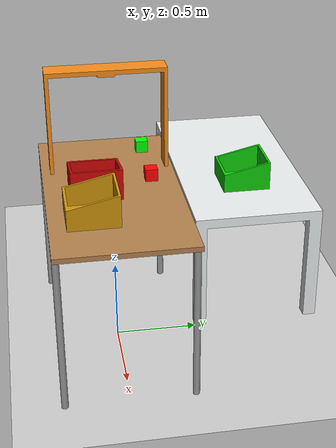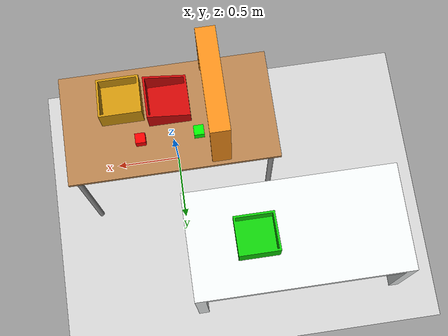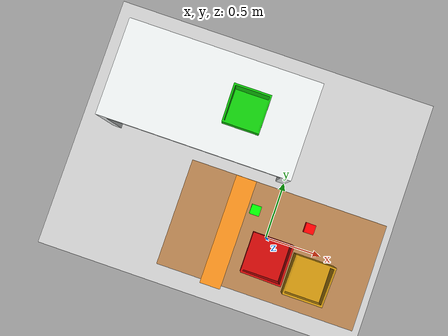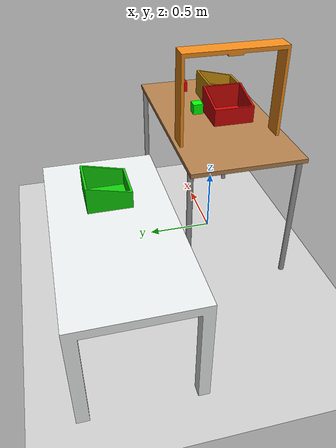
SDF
<?xml version="1.0" ?>
<sdf version='1.9'>
  <world name='simulation_world'>
    <physics name='1ms' type='ignored'>
      <max_step_size>0.001</max_step_size>
      <real_time_factor>1</real_time_factor>
      <real_time_update_rate>1000</real_time_update_rate>
    </physics>
    <plugin name='gz::sim::systems::Physics' filename='ignition-gazebo-physics-system'/>
    <plugin name='gz::sim::systems::Sensors' filename='ignition-gazebo-sensors-system'>
      <render_engine>ogre</render_engine>
    </plugin>
    <plugin name='gz::sim::systems::UserCommands' filename='ignition-gazebo-user-commands-system'/>
    <plugin name='gz::sim::systems::SceneBroadcaster' filename='ignition-gazebo-scene-broadcaster-system'/>
    <scene>
      <ambient>1 1 1 1</ambient>
      <background>0.8 0.8 0.8 1</background>
      <grid>true</grid>
      <shadows>true</shadows>
    </scene>

    <gui fullscreen='false'>
      <plugin name='3D View' filename='MinimalScene'>
        <ignition-gui>
          <title>3D View</title>
          <property type='bool' key='showTitleBar'>false</property>
          <property type='string' key='state'>docked</property>
        </ignition-gui>
        <engine>ogre2</engine>
        <scene>scene</scene>
        <ambient_light>0.4 0.4 0.4</ambient_light>
        <background_color>0.8 0.8 0.8</background_color>
        <camera_pose>-6 0 6 0 0.5 0</camera_pose>
      </plugin>
      <plugin name='Entity context menu' filename='EntityContextMenuPlugin'>
        <ignition-gui>
          <property key='state' type='string'>floating</property>
          <property key='width' type='double'>5</property>
          <property key='height' type='double'>5</property>
          <property key='showTitleBar' type='bool'>false</property>
        </ignition-gui>
      </plugin>
      <plugin name='Scene Manager' filename='GzSceneManager'>
        <ignition-gui>
          <property key='resizable' type='bool'>false</property>
          <property key='width' type='double'>5</property>
          <property key='height' type='double'>5</property>
          <property key='state' type='string'>floating</property>
          <property key='showTitleBar' type='bool'>false</property>
        </ignition-gui>
      </plugin>
      <plugin name='Interactive view control' filename='InteractiveViewControl'>
        <ignition-gui>
          <property key='resizable' type='bool'>false</property>
          <property key='width' type='double'>5</property>
          <property key='height' type='double'>5</property>
          <property key='state' type='string'>floating</property>
          <property key='showTitleBar' type='bool'>false</property>
        </ignition-gui>
      </plugin>
      <plugin name='Camera Tracking' filename='CameraTracking'>
        <ignition-gui>
          <property key='resizable' type='bool'>false</property>
          <property key='width' type='double'>5</property>
          <property key='height' type='double'>5</property>
          <property key='state' type='string'>floating</property>
          <property key='showTitleBar' type='bool'>false</property>
        </ignition-gui>
      </plugin>
      <plugin name='World control' filename='WorldControl'>
        <ignition-gui>
          <title>World control</title>
          <property type='bool' key='showTitleBar'>false</property>
          <property type='bool' key='resizable'>false</property>
          <property type='double' key='height'>72</property>
          <property type='double' key='width'>121</property>
          <property type='double' key='z'>1</property>
          <property type='string' key='state'>floating</property>
          <anchors target='3D View'>
            <line own='left' target='left'/>
            <line own='bottom' target='bottom'/>
          </anchors>
        </ignition-gui>
        <play_pause>true</play_pause>
        <step>true</step>
        <start_paused>true</start_paused>
        <use_event>true</use_event>
      </plugin>
      <plugin name='World stats' filename='WorldStats'>
        <ignition-gui>
          <title>World stats</title>
          <property type='bool' key='showTitleBar'>false</property>
          <property type='bool' key='resizable'>false</property>
          <property type='double' key='height'>110</property>
          <property type='double' key='width'>290</property>
          <property type='double' key='z'>1</property>
          <property type='string' key='state'>floating</property>
          <anchors target='3D View'>
            <line own='right' target='right'/>
            <line own='bottom' target='bottom'/>
          </anchors>
        </ignition-gui>
        <sim_time>true</sim_time>
        <real_time>true</real_time>
        <real_time_factor>true</real_time_factor>
        <iterations>true</iterations>
      </plugin>
      <plugin name='Component inspector' filename='ComponentInspector'>
        <ignition-gui>
          <property type='string' key='state'>docked</property>
        </ignition-gui>
      </plugin>
      <plugin name='Entity tree' filename='EntityTree'>
        <ignition-gui>
          <property type='string' key='state'>docked</property>
        </ignition-gui>
      </plugin>
    </gui>
    <gravity>0 0 -9.8</gravity>
    <magnetic_field>6e-06 2.3e-05 -4.2e-05</magnetic_field>
    <atmosphere type='adiabatic'/>
    <model name='ground_plane'>
      <static>true</static>
      <link name='link'>
        <collision name='collision'>
          <geometry>
            <plane>
              <normal>0 0 1</normal>
              <size>100 100</size>
            </plane>
          </geometry>
          <surface>
            <friction>
              <ode/>
            </friction>
            <bounce/>
            <contact/>
          </surface>
        </collision>
        <visual name='visual'>
          <geometry>
            <plane>
              <normal>0 0 1</normal>
              <size>100 100</size>
            </plane>
          </geometry>
          <material>
            <ambient>0.8 0.8 0.8 1</ambient>
            <diffuse>0.8 0.8 0.8 1</diffuse>
            <specular>0.8 0.8 0.8 1</specular>
          </material>
        </visual>
        <pose>0 0 0 0 -0 0</pose>
        <inertial>
          <pose>0 0 0 0 -0 0</pose>
          <mass>1</mass>
          <inertia>
            <ixx>1</ixx>
            <ixy>0</ixy>
            <ixz>0</ixz>
            <iyy>1</iyy>
            <iyz>0</iyz>
            <izz>1</izz>
          </inertia>
        </inertial>
        <enable_wind>false</enable_wind>
      </link>
      <pose>0 0 0 0 -0 0</pose>
      <self_collide>false</self_collide>
    </model>
    <model name='red_cube'>
      <pose>0.2 0.2 1.2 0 -0 0</pose>
      <link name='box_link'>
        <inertial>
          <inertia>
            <ixx>1</ixx>
            <ixy>0</ixy>
            <ixz>0</ixz>
            <iyy>1</iyy>
            <iyz>0</iyz>
            <izz>1</izz>
          </inertia>
          <mass>0.5</mass>
          <pose>0 0 0 0 -0 0</pose>
        </inertial>
        <collision name='box_collision'>
          <geometry>
            <box>
              <size>0.07 0.07 0.07</size>
            </box>
          </geometry>
          <surface>
            <friction>
              <ode/>
            </friction>
            <bounce/>
            <contact/>
          </surface>
        </collision>
        <visual name='box_visual'>
          <geometry>
            <box>
              <size>0.07 0.07 0.07</size>
            </box>
          </geometry>
          <material>
            <ambient>1 0 0 1</ambient>
            <diffuse>1 0 0 1</diffuse>
            <specular>1 0 0 1</specular>
          </material>
        </visual>
        <pose>0 0 0 0 -0 0</pose>
        <enable_wind>false</enable_wind>
      </link>
      <static>false</static>
      <self_collide>false</self_collide>
    </model>
    <model name='green_cube'>
      <pose>-0.2 0.2 1.2 0 -0 0</pose>
      <link name='box_link'>
        <inertial>
          <inertia>
            <ixx>1</ixx>
            <ixy>0</ixy>
            <ixz>0</ixz>
            <iyy>1</iyy>
            <iyz>0</iyz>
            <izz>1</izz>
          </inertia>
          <mass>0.5</mass>
          <pose>0 0 0 0 -0 0</pose>
        </inertial>
        <collision name='box_collision'>
          <geometry>
            <box>
              <size>0.07 0.07 0.07</size>
            </box>
          </geometry>
          <surface>
            <friction>
              <ode/>
            </friction>
            <bounce/>
            <contact/>
          </surface>
        </collision>
        <visual name='box_visual'>
          <geometry>
            <box>
              <size>0.07 0.07 0.07</size>
            </box>
          </geometry>
          <material>
            <ambient>0 1 0 1</ambient>
            <diffuse>0 1 0 1</diffuse>
            <specular>0 1 0 1</specular>
          </material>
        </visual>
        <pose>0 0 0 0 -0 0</pose>
        <enable_wind>false</enable_wind>
      </link>
      <static>false</static>
      <self_collide>false</self_collide>
    </model>
    <include>
      <uri>model://red_target</uri>
      <name>red_target</name>
      <pose>-0.01 -0.1 1.01 -0 -0 3.14</pose>
    </include>
    <include>
      <uri>model://yellow_target</uri>
      <name>yellow_target</name>
      <pose>0.32 -0.15 1.01 -0 -0 -1.57</pose>
    </include>
    <include>
      <uri>model://green_target</uri>
      <name>green_target</name>
      <pose>-0.5 0.9 0.75 -0 -0 -1.57</pose>
    </include>
    <include>
      <uri>model://target_table</uri>
      <name>target_table</name>
      <pose>-0.8 0.9 0 -0 -0 0</pose>
    </include>
    <include>
      <uri>model://table</uri>
      <name>table</name>
      <pose>-0 0 0 -0 -0 0</pose>
    </include>
    <include>
      <uri>model://overhead_camera_mount</uri>
      <name>overhead_camera_mount</name>
      <pose>-0.4 -0.35 1.65 0 1.57 0</pose>
    </include>
    <light name='sun' type='directional'>
      <pose>0 0 10 0 -0 0</pose>
      <cast_shadows>true</cast_shadows>
      <intensity>1</intensity>
      <direction>-0.5 0.1 -0.9</direction>
      <diffuse>0.8 0.8 0.8 1</diffuse>
      <specular>0.8 0.8 0.8 1</specular>
      <attenuation>
        <range>1000</range>
        <linear>0.01</linear>
        <constant>0.90000000000000002</constant>
        <quadratic>0.001</quadratic>
      </attenuation>
      <spot>
        <inner_angle>0</inner_angle>
        <outer_angle>0</outer_angle>
        <falloff>0</falloff>
      </spot>
    </light>
  </world>
</sdf>

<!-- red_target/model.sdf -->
<sdf version='1.6'>
  <model name='red_target'>
    <static>true</static>
    <link name="link">
      <self_collide>0</self_collide>
      <enable_wind>0</enable_wind>
      <kinematic>0</kinematic>
      <pose frame=''>0 0 0 0 -0 0</pose>
      <gravity>1</gravity>
      <inertial>
        <mass>1</mass>
        <pose frame=''>0 0 0 0 -0 0</pose>
        <inertia>
          <ixx>1</ixx>
          <ixy>0</ixy>
          <ixz>0</ixz>
          <iyy>1</iyy>
          <iyz>0</iyz>
          <izz>1</izz>
        </inertia>
      </inertial>
      <visual name='visual'>
        <pose frame=''>0 0 0.01 0 -0 0</pose>
        <geometry>
          <mesh>
            <scale>0.5 0.5 0.5</scale>
            <uri>model://red_target/meshes/red_target.dae</uri>
          </mesh>
        </geometry>
      </visual>
            <collision name='front_wall'>
        <laser_retro>0</laser_retro>
        <max_contacts>10</max_contacts>
        <pose frame=''>0.144 0 0 0 -0 0</pose>
        <geometry>
          <box>
            <size>0.012 0.3 0.24</size>
          </box>
        </geometry>
        <surface>
          <friction>
            <ode>
              <mu>1</mu>
              <mu2>1</mu2>
              <fdir1>0 0 0</fdir1>
              <slip1>0</slip1>
              <slip2>0</slip2>
            </ode>
            <torsional>
              <coefficient>1</coefficient>
              <patch_radius>0</patch_radius>
              <surface_radius>0</surface_radius>
              <use_patch_radius>1</use_patch_radius>
              <ode>
                <slip>0</slip>
              </ode>
            </torsional>
          </friction>
          <bounce>
            <restitution_coefficient>0</restitution_coefficient>
            <threshold>1e+06</threshold>
          </bounce>
          <contact>
            <collide_without_contact>0</collide_without_contact>
            <collide_without_contact_bitmask>1</collide_without_contact_bitmask>
            <collide_bitmask>1</collide_bitmask>
            <ode>
              <soft_cfm>0</soft_cfm>
              <soft_erp>0.2</soft_erp>
              <kp>1e+13</kp>
              <kd>1</kd>
              <max_vel>0.01</max_vel>
              <min_depth>0</min_depth>
            </ode>
            <bullet>
              <split_impulse>1</split_impulse>
              <split_impulse_penetration_threshold>-0.01</split_impulse_penetration_threshold>
              <soft_cfm>0</soft_cfm>
              <soft_erp>0.2</soft_erp>
              <kp>1e+13</kp>
              <kd>1</kd>
            </bullet>
          </contact>
        </surface>
      </collision>
      <collision name='right_wall'>
        <laser_retro>0</laser_retro>
        <max_contacts>10</max_contacts>
        <pose frame=''>0 -0.144 0 0 -0 0</pose>
        <geometry>
          <box>
            <size>0.3 0.012 0.36</size>
          </box>
        </geometry>
        <surface>
          <friction>
            <ode>
              <mu>1</mu>
              <mu2>1</mu2>
              <fdir1>0 0 0</fdir1>
              <slip1>0</slip1>
              <slip2>0</slip2>
            </ode>
            <torsional>
              <coefficient>1</coefficient>
              <patch_radius>0</patch_radius>
              <surface_radius>0</surface_radius>
              <use_patch_radius>1</use_patch_radius>
              <ode>
                <slip>0</slip>
              </ode>
            </torsional>
          </friction>
          <bounce>
            <restitution_coefficient>0</restitution_coefficient>
            <threshold>1e+06</threshold>
          </bounce>
          <contact>
            <collide_without_contact>0</collide_without_contact>
            <collide_without_contact_bitmask>1</collide_without_contact_bitmask>
            <collide_bitmask>1</collide_bitmask>
            <ode>
              <soft_cfm>0</soft_cfm>
              <soft_erp>0.2</soft_erp>
              <kp>1e+13</kp>
              <kd>1</kd>
              <max_vel>0.01</max_vel>
              <min_depth>0</min_depth>
            </ode>
            <bullet>
              <split_impulse>1</split_impulse>
              <split_impulse_penetration_threshold>-0.01</split_impulse_penetration_threshold>
              <soft_cfm>0</soft_cfm>
              <soft_erp>0.2</soft_erp>
              <kp>1e+13</kp>
              <kd>1</kd>
            </bullet>
          </contact>
        </surface>
      </collision>
      <collision name='bottom'>
        <laser_retro>0</laser_retro>
        <max_contacts>10</max_contacts>
        <pose frame=''>0 0 0 0 -0 0</pose>
        <geometry>
          <box>
            <size>0.3 0.3 0.025</size>
          </box>
        </geometry>
        <surface>
          <friction>
            <ode>
              <mu>1</mu>
              <mu2>1</mu2>
              <fdir1>0 0 0</fdir1>
              <slip1>0</slip1>
              <slip2>0</slip2>
            </ode>
            <torsional>
              <coefficient>1</coefficient>
              <patch_radius>0</patch_radius>
              <surface_radius>0</surface_radius>
              <use_patch_radius>1</use_patch_radius>
              <ode>
                <slip>0</slip>
              </ode>
            </torsional>
          </friction>
          <bounce>
            <restitution_coefficient>0</restitution_coefficient>
            <threshold>1e+06</threshold>
          </bounce>
          <contact>
            <collide_without_contact>0</collide_without_contact>
            <collide_without_contact_bitmask>1</collide_without_contact_bitmask>
            <collide_bitmask>1</collide_bitmask>
            <ode>
              <soft_cfm>0</soft_cfm>
              <soft_erp>0.2</soft_erp>
              <kp>1e+13</kp>
              <kd>1</kd>
              <max_vel>0.01</max_vel>
              <min_depth>0</min_depth>
            </ode>
            <bullet>
              <split_impulse>1</split_impulse>
              <split_impulse_penetration_threshold>-0.01</split_impulse_penetration_threshold>
              <soft_cfm>0</soft_cfm>
              <soft_erp>0.2</soft_erp>
              <kp>1e+13</kp>
              <kd>1</kd>
            </bullet>
          </contact>
        </surface>
      </collision>
      <collision name='left_wall'>
        <laser_retro>0</laser_retro>
        <max_contacts>10</max_contacts>
        <pose frame=''>0 0.144 0 0 -0 0</pose>
        <geometry>
          <box>
            <size>0.3 0.012 0.39</size>
          </box>
        </geometry>
        <surface>
          <friction>
            <ode>
              <mu>1</mu>
              <mu2>1</mu2>
              <fdir1>0 0 0</fdir1>
              <slip1>0</slip1>
              <slip2>0</slip2>
            </ode>
            <torsional>
              <coefficient>1</coefficient>
              <patch_radius>0</patch_radius>
              <surface_radius>0</surface_radius>
              <use_patch_radius>1</use_patch_radius>
              <ode>
                <slip>0</slip>
              </ode>
            </torsional>
          </friction>
          <bounce>
            <restitution_coefficient>0</restitution_coefficient>
            <threshold>1e+06</threshold>
          </bounce>
          <contact>
            <collide_without_contact>0</collide_without_contact>
            <collide_without_contact_bitmask>1</collide_without_contact_bitmask>
            <collide_bitmask>1</collide_bitmask>
            <ode>
              <soft_cfm>0</soft_cfm>
              <soft_erp>0.2</soft_erp>
              <kp>1e+13</kp>
              <kd>1</kd>
              <max_vel>0.01</max_vel>
              <min_depth>0</min_depth>
            </ode>
            <bullet>
              <split_impulse>1</split_impulse>
              <split_impulse_penetration_threshold>-0.01</split_impulse_penetration_threshold>
              <soft_cfm>0</soft_cfm>
              <soft_erp>0.2</soft_erp>
              <kp>1e+13</kp>
              <kd>1</kd>
            </bullet>
          </contact>
        </surface>
      </collision>
      <collision name='back_wall'>
        <laser_retro>0</laser_retro>
        <max_contacts>10</max_contacts>
        <pose frame=''>-0.144 0 0 0 -0 0</pose>
        <geometry>
          <box>
            <size>0.012 0.3 0.39</size>
          </box>
        </geometry>
        <surface>
          <friction>
            <ode>
              <mu>1</mu>
              <mu2>1</mu2>
              <fdir1>0 0 0</fdir1>
              <slip1>0</slip1>
              <slip2>0</slip2>
            </ode>
            <torsional>
              <coefficient>1</coefficient>
              <patch_radius>0</patch_radius>
              <surface_radius>0</surface_radius>
              <use_patch_radius>1</use_patch_radius>
              <ode>
                <slip>0</slip>
              </ode>
            </torsional>
          </friction>
          <bounce>
            <restitution_coefficient>0</restitution_coefficient>
            <threshold>1e+06</threshold>
          </bounce>
          <contact>
            <collide_without_contact>0</collide_without_contact>
            <collide_without_contact_bitmask>1</collide_without_contact_bitmask>
            <collide_bitmask>1</collide_bitmask>
            <ode>
              <soft_cfm>0</soft_cfm>
              <soft_erp>0.2</soft_erp>
              <kp>1e+13</kp>
              <kd>1</kd>
              <max_vel>0.01</max_vel>
              <min_depth>0</min_depth>
            </ode>
            <bullet>
              <split_impulse>1</split_impulse>
              <split_impulse_penetration_threshold>-0.01</split_impulse_penetration_threshold>
              <soft_cfm>0</soft_cfm>
              <soft_erp>0.2</soft_erp>
              <kp>1e+13</kp>
              <kd>1</kd>
            </bullet>
          </contact>
        </surface>
      </collision>
    </link>
  </model>
</sdf>

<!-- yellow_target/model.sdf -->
<sdf version='1.6'>
  <model name='yellow_target'>
    <static>true</static>
    <link name="link">
      <self_collide>0</self_collide>
      <enable_wind>0</enable_wind>
      <kinematic>0</kinematic>
      <pose frame=''>0 0 0 0 -0 0</pose>
      <gravity>1</gravity>
      <inertial>
        <mass>1</mass>
        <pose frame=''>0 0 0 0 -0 0</pose>
        <inertia>
          <ixx>1</ixx>
          <ixy>0</ixy>
          <ixz>0</ixz>
          <iyy>1</iyy>
          <iyz>0</iyz>
          <izz>1</izz>
        </inertia>
      </inertial>
      <visual name='visual'>
        <pose frame=''>0 0 0.01 0 -0 0</pose>
        <geometry>
          <mesh>
            <scale>0.5 0.5 0.5</scale>
            <uri>model://yellow_target/meshes/yellow_target.dae</uri>
          </mesh>
        </geometry>
      </visual>
            <collision name='front_wall'>
        <laser_retro>0</laser_retro>
        <max_contacts>10</max_contacts>
        <pose frame=''>0.144 0 0 0 -0 0</pose>
        <geometry>
          <box>
            <size>0.012 0.3 0.24</size>
          </box>
        </geometry>
        <surface>
          <friction>
            <ode>
              <mu>1</mu>
              <mu2>1</mu2>
              <fdir1>0 0 0</fdir1>
              <slip1>0</slip1>
              <slip2>0</slip2>
            </ode>
            <torsional>
              <coefficient>1</coefficient>
              <patch_radius>0</patch_radius>
              <surface_radius>0</surface_radius>
              <use_patch_radius>1</use_patch_radius>
              <ode>
                <slip>0</slip>
              </ode>
            </torsional>
          </friction>
          <bounce>
            <restitution_coefficient>0</restitution_coefficient>
            <threshold>1e+06</threshold>
          </bounce>
          <contact>
            <collide_without_contact>0</collide_without_contact>
            <collide_without_contact_bitmask>1</collide_without_contact_bitmask>
            <collide_bitmask>1</collide_bitmask>
            <ode>
              <soft_cfm>0</soft_cfm>
              <soft_erp>0.2</soft_erp>
              <kp>1e+13</kp>
              <kd>1</kd>
              <max_vel>0.01</max_vel>
              <min_depth>0</min_depth>
            </ode>
            <bullet>
              <split_impulse>1</split_impulse>
              <split_impulse_penetration_threshold>-0.01</split_impulse_penetration_threshold>
              <soft_cfm>0</soft_cfm>
              <soft_erp>0.2</soft_erp>
              <kp>1e+13</kp>
              <kd>1</kd>
            </bullet>
          </contact>
        </surface>
      </collision>
      <collision name='right_wall'>
        <laser_retro>0</laser_retro>
        <max_contacts>10</max_contacts>
        <pose frame=''>0 -0.144 0 0 -0 0</pose>
        <geometry>
          <box>
            <size>0.3 0.012 0.36</size>
          </box>
        </geometry>
        <surface>
          <friction>
            <ode>
              <mu>1</mu>
              <mu2>1</mu2>
              <fdir1>0 0 0</fdir1>
              <slip1>0</slip1>
              <slip2>0</slip2>
            </ode>
            <torsional>
              <coefficient>1</coefficient>
              <patch_radius>0</patch_radius>
              <surface_radius>0</surface_radius>
              <use_patch_radius>1</use_patch_radius>
              <ode>
                <slip>0</slip>
              </ode>
            </torsional>
          </friction>
          <bounce>
            <restitution_coefficient>0</restitution_coefficient>
            <threshold>1e+06</threshold>
          </bounce>
          <contact>
            <collide_without_contact>0</collide_without_contact>
            <collide_without_contact_bitmask>1</collide_without_contact_bitmask>
            <collide_bitmask>1</collide_bitmask>
            <ode>
              <soft_cfm>0</soft_cfm>
              <soft_erp>0.2</soft_erp>
              <kp>1e+13</kp>
              <kd>1</kd>
              <max_vel>0.01</max_vel>
              <min_depth>0</min_depth>
            </ode>
            <bullet>
              <split_impulse>1</split_impulse>
              <split_impulse_penetration_threshold>-0.01</split_impulse_penetration_threshold>
              <soft_cfm>0</soft_cfm>
              <soft_erp>0.2</soft_erp>
              <kp>1e+13</kp>
              <kd>1</kd>
            </bullet>
          </contact>
        </surface>
      </collision>
      <collision name='bottom'>
        <laser_retro>0</laser_retro>
        <max_contacts>10</max_contacts>
        <pose frame=''>0 0 0 0 -0 0</pose>
        <geometry>
          <box>
            <size>0.3 0.3 0.025</size>
          </box>
        </geometry>
        <surface>
          <friction>
            <ode>
              <mu>1</mu>
              <mu2>1</mu2>
              <fdir1>0 0 0</fdir1>
              <slip1>0</slip1>
              <slip2>0</slip2>
            </ode>
            <torsional>
              <coefficient>1</coefficient>
              <patch_radius>0</patch_radius>
              <surface_radius>0</surface_radius>
              <use_patch_radius>1</use_patch_radius>
              <ode>
                <slip>0</slip>
              </ode>
            </torsional>
          </friction>
          <bounce>
            <restitution_coefficient>0</restitution_coefficient>
            <threshold>1e+06</threshold>
          </bounce>
          <contact>
            <collide_without_contact>0</collide_without_contact>
            <collide_without_contact_bitmask>1</collide_without_contact_bitmask>
            <collide_bitmask>1</collide_bitmask>
            <ode>
              <soft_cfm>0</soft_cfm>
              <soft_erp>0.2</soft_erp>
              <kp>1e+13</kp>
              <kd>1</kd>
              <max_vel>0.01</max_vel>
              <min_depth>0</min_depth>
            </ode>
            <bullet>
              <split_impulse>1</split_impulse>
              <split_impulse_penetration_threshold>-0.01</split_impulse_penetration_threshold>
              <soft_cfm>0</soft_cfm>
              <soft_erp>0.2</soft_erp>
              <kp>1e+13</kp>
              <kd>1</kd>
            </bullet>
          </contact>
        </surface>
      </collision>
      <collision name='left_wall'>
        <laser_retro>0</laser_retro>
        <max_contacts>10</max_contacts>
        <pose frame=''>0 0.144 0 0 -0 0</pose>
        <geometry>
          <box>
            <size>0.3 0.012 0.39</size>
          </box>
        </geometry>
        <surface>
          <friction>
            <ode>
              <mu>1</mu>
              <mu2>1</mu2>
              <fdir1>0 0 0</fdir1>
              <slip1>0</slip1>
              <slip2>0</slip2>
            </ode>
            <torsional>
              <coefficient>1</coefficient>
              <patch_radius>0</patch_radius>
              <surface_radius>0</surface_radius>
              <use_patch_radius>1</use_patch_radius>
              <ode>
                <slip>0</slip>
              </ode>
            </torsional>
          </friction>
          <bounce>
            <restitution_coefficient>0</restitution_coefficient>
            <threshold>1e+06</threshold>
          </bounce>
          <contact>
            <collide_without_contact>0</collide_without_contact>
            <collide_without_contact_bitmask>1</collide_without_contact_bitmask>
            <collide_bitmask>1</collide_bitmask>
            <ode>
              <soft_cfm>0</soft_cfm>
              <soft_erp>0.2</soft_erp>
              <kp>1e+13</kp>
              <kd>1</kd>
              <max_vel>0.01</max_vel>
              <min_depth>0</min_depth>
            </ode>
            <bullet>
              <split_impulse>1</split_impulse>
              <split_impulse_penetration_threshold>-0.01</split_impulse_penetration_threshold>
              <soft_cfm>0</soft_cfm>
              <soft_erp>0.2</soft_erp>
              <kp>1e+13</kp>
              <kd>1</kd>
            </bullet>
          </contact>
        </surface>
      </collision>
      <collision name='back_wall'>
        <laser_retro>0</laser_retro>
        <max_contacts>10</max_contacts>
        <pose frame=''>-0.144 0 0 0 -0 0</pose>
        <geometry>
          <box>
            <size>0.012 0.3 0.39</size>
          </box>
        </geometry>
        <surface>
          <friction>
            <ode>
              <mu>1</mu>
              <mu2>1</mu2>
              <fdir1>0 0 0</fdir1>
              <slip1>0</slip1>
              <slip2>0</slip2>
            </ode>
            <torsional>
              <coefficient>1</coefficient>
              <patch_radius>0</patch_radius>
              <surface_radius>0</surface_radius>
              <use_patch_radius>1</use_patch_radius>
              <ode>
                <slip>0</slip>
              </ode>
            </torsional>
          </friction>
          <bounce>
            <restitution_coefficient>0</restitution_coefficient>
            <threshold>1e+06</threshold>
          </bounce>
          <contact>
            <collide_without_contact>0</collide_without_contact>
            <collide_without_contact_bitmask>1</collide_without_contact_bitmask>
            <collide_bitmask>1</collide_bitmask>
            <ode>
              <soft_cfm>0</soft_cfm>
              <soft_erp>0.2</soft_erp>
              <kp>1e+13</kp>
              <kd>1</kd>
              <max_vel>0.01</max_vel>
              <min_depth>0</min_depth>
            </ode>
            <bullet>
              <split_impulse>1</split_impulse>
              <split_impulse_penetration_threshold>-0.01</split_impulse_penetration_threshold>
              <soft_cfm>0</soft_cfm>
              <soft_erp>0.2</soft_erp>
              <kp>1e+13</kp>
              <kd>1</kd>
            </bullet>
          </contact>
        </surface>
      </collision>
    </link>
  </model>
</sdf>

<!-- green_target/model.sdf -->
<sdf version='1.6'>
  <model name='green_target'>
    <static>true</static>
    <link name="link">
      <self_collide>0</self_collide>
      <enable_wind>0</enable_wind>
      <kinematic>0</kinematic>
      <pose frame=''>0 0 0 0 -0 0</pose>
      <gravity>1</gravity>
      <inertial>
        <mass>1</mass>
        <pose frame=''>0 0 0 0 -0 0</pose>
        <inertia>
          <ixx>1</ixx>
          <ixy>0</ixy>
          <ixz>0</ixz>
          <iyy>1</iyy>
          <iyz>0</iyz>
          <izz>1</izz>
        </inertia>
      </inertial>
      <visual name='visual'>
        <pose frame=''>0 0 0.01 0 -0 0</pose>
        <geometry>
          <mesh>
            <scale>0.5 0.5 0.5</scale>
            <uri>model://green_target/meshes/green_target.dae</uri>
          </mesh>
        </geometry>
      </visual>
            <collision name='front_wall'>
        <laser_retro>0</laser_retro>
        <max_contacts>10</max_contacts>
        <pose frame=''>0.144 0 0 0 -0 0</pose>
        <geometry>
          <box>
            <size>0.012 0.3 0.24</size>
          </box>
        </geometry>
        <surface>
          <friction>
            <ode>
              <mu>1</mu>
              <mu2>1</mu2>
              <fdir1>0 0 0</fdir1>
              <slip1>0</slip1>
              <slip2>0</slip2>
            </ode>
            <torsional>
              <coefficient>1</coefficient>
              <patch_radius>0</patch_radius>
              <surface_radius>0</surface_radius>
              <use_patch_radius>1</use_patch_radius>
              <ode>
                <slip>0</slip>
              </ode>
            </torsional>
          </friction>
          <bounce>
            <restitution_coefficient>0</restitution_coefficient>
            <threshold>1e+06</threshold>
          </bounce>
          <contact>
            <collide_without_contact>0</collide_without_contact>
            <collide_without_contact_bitmask>1</collide_without_contact_bitmask>
            <collide_bitmask>1</collide_bitmask>
            <ode>
              <soft_cfm>0</soft_cfm>
              <soft_erp>0.2</soft_erp>
              <kp>1e+13</kp>
              <kd>1</kd>
              <max_vel>0.01</max_vel>
              <min_depth>0</min_depth>
            </ode>
            <bullet>
              <split_impulse>1</split_impulse>
              <split_impulse_penetration_threshold>-0.01</split_impulse_penetration_threshold>
              <soft_cfm>0</soft_cfm>
              <soft_erp>0.2</soft_erp>
              <kp>1e+13</kp>
              <kd>1</kd>
            </bullet>
          </contact>
        </surface>
      </collision>
      <collision name='right_wall'>
        <laser_retro>0</laser_retro>
        <max_contacts>10</max_contacts>
        <pose frame=''>0 -0.144 0 0 -0 0</pose>
        <geometry>
          <box>
            <size>0.3 0.012 0.36</size>
          </box>
        </geometry>
        <surface>
          <friction>
            <ode>
              <mu>1</mu>
              <mu2>1</mu2>
              <fdir1>0 0 0</fdir1>
              <slip1>0</slip1>
              <slip2>0</slip2>
            </ode>
            <torsional>
              <coefficient>1</coefficient>
              <patch_radius>0</patch_radius>
              <surface_radius>0</surface_radius>
              <use_patch_radius>1</use_patch_radius>
              <ode>
                <slip>0</slip>
              </ode>
            </torsional>
          </friction>
          <bounce>
            <restitution_coefficient>0</restitution_coefficient>
            <threshold>1e+06</threshold>
          </bounce>
          <contact>
            <collide_without_contact>0</collide_without_contact>
            <collide_without_contact_bitmask>1</collide_without_contact_bitmask>
            <collide_bitmask>1</collide_bitmask>
            <ode>
              <soft_cfm>0</soft_cfm>
              <soft_erp>0.2</soft_erp>
              <kp>1e+13</kp>
              <kd>1</kd>
              <max_vel>0.01</max_vel>
              <min_depth>0</min_depth>
            </ode>
            <bullet>
              <split_impulse>1</split_impulse>
              <split_impulse_penetration_threshold>-0.01</split_impulse_penetration_threshold>
              <soft_cfm>0</soft_cfm>
              <soft_erp>0.2</soft_erp>
              <kp>1e+13</kp>
              <kd>1</kd>
            </bullet>
          </contact>
        </surface>
      </collision>
      <collision name='bottom'>
        <laser_retro>0</laser_retro>
        <max_contacts>10</max_contacts>
        <pose frame=''>0 0 0 0 -0 0</pose>
        <geometry>
          <box>
            <size>0.3 0.3 0.025</size>
          </box>
        </geometry>
        <surface>
          <friction>
            <ode>
              <mu>1</mu>
              <mu2>1</mu2>
              <fdir1>0 0 0</fdir1>
              <slip1>0</slip1>
              <slip2>0</slip2>
            </ode>
            <torsional>
              <coefficient>1</coefficient>
              <patch_radius>0</patch_radius>
              <surface_radius>0</surface_radius>
              <use_patch_radius>1</use_patch_radius>
              <ode>
                <slip>0</slip>
              </ode>
            </torsional>
          </friction>
          <bounce>
            <restitution_coefficient>0</restitution_coefficient>
            <threshold>1e+06</threshold>
          </bounce>
          <contact>
            <collide_without_contact>0</collide_without_contact>
            <collide_without_contact_bitmask>1</collide_without_contact_bitmask>
            <collide_bitmask>1</collide_bitmask>
            <ode>
              <soft_cfm>0</soft_cfm>
              <soft_erp>0.2</soft_erp>
              <kp>1e+13</kp>
              <kd>1</kd>
              <max_vel>0.01</max_vel>
              <min_depth>0</min_depth>
            </ode>
            <bullet>
              <split_impulse>1</split_impulse>
              <split_impulse_penetration_threshold>-0.01</split_impulse_penetration_threshold>
              <soft_cfm>0</soft_cfm>
              <soft_erp>0.2</soft_erp>
              <kp>1e+13</kp>
              <kd>1</kd>
            </bullet>
          </contact>
        </surface>
      </collision>
      <collision name='left_wall'>
        <laser_retro>0</laser_retro>
        <max_contacts>10</max_contacts>
        <pose frame=''>0 0.144 0 0 -0 0</pose>
        <geometry>
          <box>
            <size>0.3 0.012 0.39</size>
          </box>
        </geometry>
        <surface>
          <friction>
            <ode>
              <mu>1</mu>
              <mu2>1</mu2>
              <fdir1>0 0 0</fdir1>
              <slip1>0</slip1>
              <slip2>0</slip2>
            </ode>
            <torsional>
              <coefficient>1</coefficient>
              <patch_radius>0</patch_radius>
              <surface_radius>0</surface_radius>
              <use_patch_radius>1</use_patch_radius>
              <ode>
                <slip>0</slip>
              </ode>
            </torsional>
          </friction>
          <bounce>
            <restitution_coefficient>0</restitution_coefficient>
            <threshold>1e+06</threshold>
          </bounce>
          <contact>
            <collide_without_contact>0</collide_without_contact>
            <collide_without_contact_bitmask>1</collide_without_contact_bitmask>
            <collide_bitmask>1</collide_bitmask>
            <ode>
              <soft_cfm>0</soft_cfm>
              <soft_erp>0.2</soft_erp>
              <kp>1e+13</kp>
              <kd>1</kd>
              <max_vel>0.01</max_vel>
              <min_depth>0</min_depth>
            </ode>
            <bullet>
              <split_impulse>1</split_impulse>
              <split_impulse_penetration_threshold>-0.01</split_impulse_penetration_threshold>
              <soft_cfm>0</soft_cfm>
              <soft_erp>0.2</soft_erp>
              <kp>1e+13</kp>
              <kd>1</kd>
            </bullet>
          </contact>
        </surface>
      </collision>
      <collision name='back_wall'>
        <laser_retro>0</laser_retro>
        <max_contacts>10</max_contacts>
        <pose frame=''>-0.144 0 0 0 -0 0</pose>
        <geometry>
          <box>
            <size>0.012 0.3 0.39</size>
          </box>
        </geometry>
        <surface>
          <friction>
            <ode>
              <mu>1</mu>
              <mu2>1</mu2>
              <fdir1>0 0 0</fdir1>
              <slip1>0</slip1>
              <slip2>0</slip2>
            </ode>
            <torsional>
              <coefficient>1</coefficient>
              <patch_radius>0</patch_radius>
              <surface_radius>0</surface_radius>
              <use_patch_radius>1</use_patch_radius>
              <ode>
                <slip>0</slip>
              </ode>
            </torsional>
          </friction>
          <bounce>
            <restitution_coefficient>0</restitution_coefficient>
            <threshold>1e+06</threshold>
          </bounce>
          <contact>
            <collide_without_contact>0</collide_without_contact>
            <collide_without_contact_bitmask>1</collide_without_contact_bitmask>
            <collide_bitmask>1</collide_bitmask>
            <ode>
              <soft_cfm>0</soft_cfm>
              <soft_erp>0.2</soft_erp>
              <kp>1e+13</kp>
              <kd>1</kd>
              <max_vel>0.01</max_vel>
              <min_depth>0</min_depth>
            </ode>
            <bullet>
              <split_impulse>1</split_impulse>
              <split_impulse_penetration_threshold>-0.01</split_impulse_penetration_threshold>
              <soft_cfm>0</soft_cfm>
              <soft_erp>0.2</soft_erp>
              <kp>1e+13</kp>
              <kd>1</kd>
            </bullet>
          </contact>
        </surface>
      </collision>
    </link>
  </model>
</sdf>

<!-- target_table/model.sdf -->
<sdf version='1.6'>
  <model name='target_table'>
    <link name='link'>
      <self_collide>0</self_collide>
      <enable_wind>0</enable_wind>
      <kinematic>0</kinematic>
      <pose frame=''>0 0 0 0 -0 0</pose>
      <gravity>1</gravity>
      <inertial>
        <mass>1</mass>
        <pose frame=''>0 0 0 0 -0 0</pose>
        <inertia>
          <ixx>1</ixx>
          <ixy>0</ixy>
          <ixz>0</ixz>
          <iyy>1</iyy>
          <iyz>0</iyz>
          <izz>1</izz>
        </inertia>
      </inertial>
      <visual name='visual'>
        <pose frame=''>0 0 0.73 0 -0 1.57</pose>
        <geometry>
          <mesh>
            <scale>1 1 1</scale>
            <uri>model://target_table/meshes/target_table.dae</uri>
          </mesh>
        </geometry>
      </visual>
      <collision name='collision_0'>
        <laser_retro>0</laser_retro>
        <max_contacts>10</max_contacts>
        <pose frame=''>0 0 0.73 0 -0 0</pose>
        <geometry>
          <box>
            <size>0.8 1.6 0.06</size>
          </box>
        </geometry>
        <surface>
          <friction>
            <ode>
              <mu>1</mu>
              <mu2>1</mu2>
              <fdir1>0 0 0</fdir1>
              <slip1>0</slip1>
              <slip2>0</slip2>
            </ode>
            <torsional>
              <coefficient>1</coefficient>
              <patch_radius>0</patch_radius>
              <surface_radius>0</surface_radius>
              <use_patch_radius>1</use_patch_radius>
              <ode>
                <slip>0</slip>
              </ode>
            </torsional>
          </friction>
          <bounce>
            <restitution_coefficient>0</restitution_coefficient>
            <threshold>1e+06</threshold>
          </bounce>
          <contact>
            <collide_without_contact>0</collide_without_contact>
            <collide_without_contact_bitmask>1</collide_without_contact_bitmask>
            <collide_bitmask>1</collide_bitmask>
            <ode>
              <soft_cfm>0</soft_cfm>
              <soft_erp>0.2</soft_erp>
              <kp>1e+13</kp>
              <kd>1</kd>
              <max_vel>0.01</max_vel>
              <min_depth>0</min_depth>
            </ode>
            <bullet>
              <split_impulse>1</split_impulse>
              <split_impulse_penetration_threshold>-0.01</split_impulse_penetration_threshold>
              <soft_cfm>0</soft_cfm>
              <soft_erp>0.2</soft_erp>
              <kp>1e+13</kp>
              <kd>1</kd>
            </bullet>
          </contact>
        </surface>
      </collision>
    </link>
    <static>1</static>
    <allow_auto_disable>1</allow_auto_disable>
  </model>
</sdf>

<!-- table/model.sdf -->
<sdf version="1.5">
  <model name="table">
    <static>true</static>
    <link name="link">
      <collision name="surface">
        <pose>0 0 1.0 0 0 0</pose>
        <geometry>
          <box>
            <size>1.5 0.8 0.03</size>
          </box>
        </geometry>
        <surface>
          <friction>
            <ode>
              <mu>0.6</mu>
              <mu2>0.6</mu2>
            </ode>
          </friction>
        </surface>
      </collision>
      <visual name="visual1">
        <pose>0 0 1.0 0 0 0</pose>
        <geometry>
          <box>
            <size>1.5 0.8 0.03</size>
          </box>
        </geometry>
        <material>
          <script>
            <uri>model://media/materials/scripts/gazebo.material</uri>
            <name>Gazebo/Wood</name>
          </script>
        </material>
      </visual>
      <collision name="front_left_leg">
        <pose>0.68 0.38 0.5 0 0 0</pose>
        <geometry>
          <cylinder>
            <radius>0.02</radius>
            <length>1.0</length>
          </cylinder>
        </geometry>
      </collision>
      <visual name="front_left_leg">
        <pose>0.68 0.38 0.5 0 0 0</pose>
        <geometry>
          <cylinder>
            <radius>0.02</radius>
            <length>1.0</length>
          </cylinder>
        </geometry>
        <material>
          <script>
            <uri>model://media/materials/scripts/gazebo.material</uri>
            <name>Gazebo/Grey</name>
          </script>
        </material>
      </visual>
      <collision name="front_right_leg">
        <pose>0.68 -0.38 0.5 0 0 0</pose>
        <geometry>
          <cylinder>
            <radius>0.02</radius>
            <length>1.0</length>
          </cylinder>
        </geometry>
      </collision>
      <visual name="front_right_leg">
        <pose>0.68 -0.38 0.5 0 0 0</pose>
        <geometry>
          <cylinder>
            <radius>0.02</radius>
            <length>1.0</length>
          </cylinder>
        </geometry>
        <material>
          <script>
            <uri>model://media/materials/scripts/gazebo.material</uri>
            <name>Gazebo/Grey</name>
          </script>
        </material>
      </visual>
      <collision name="back_right_leg">
        <pose>-0.68 -0.38 0.5 0 0 0</pose>
        <geometry>
          <cylinder>
            <radius>0.02</radius>
            <length>1.0</length>
          </cylinder>
        </geometry>
      </collision>
      <visual name="back_right_leg">
        <pose>-0.68 -0.38 0.5 0 0 0</pose>
        <geometry>
          <cylinder>
            <radius>0.02</radius>
            <length>1.0</length>
          </cylinder>
        </geometry>
        <material>
          <script>
            <uri>model://media/materials/scripts/gazebo.material</uri>
            <name>Gazebo/Grey</name>
          </script>
        </material>
      </visual>
      <collision name="back_left_leg">
        <pose>-0.68 0.38 0.5 0 0 0</pose>
        <geometry>
          <cylinder>
            <radius>0.02</radius>
            <length>1.0</length>
          </cylinder>
        </geometry>
      </collision>
      <visual name="back_left_leg">
        <pose>-0.68 0.38 0.5 0 0 0</pose>
        <geometry>
          <cylinder>
            <radius>0.02</radius>
            <length>1.0</length>
          </cylinder>
        </geometry>
        <material>
          <script>
            <uri>model://media/materials/scripts/gazebo.material</uri>
            <name>Gazebo/Grey</name>
          </script>
        </material>
      </visual>
    </link>
  </model>
</sdf>

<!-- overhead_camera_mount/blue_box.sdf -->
<sdf version="1.6">
  <model name="overhead_camera_mount">
    <static>true</static>
    <link name="link">

      <!-- Inertial properties -->
      <inertial>
        <mass>1.0</mass>
        <inertia>
          <!-- Replace these values with actual values for your object -->
          <ixx>0.136322</ixx>
          <ixy>0</ixy>
          <ixz>0.009477</ixz>
          <iyy>0.189113</iyy>
          <iyz>0</iyz>
          <izz>0.178258</izz>
        </inertia>
        <pose>0 0 0 0 0 0</pose> <!-- Optional: adjust pose of the center of mass -->
      </inertial>
      <!-- Visual properties -->
      <visual name="visual">
        <material>
          <script>
            <name>Gazebo/Orange</name>
            <uri>model://overhead_camera_mount/media/materials/scripts/gazebo.material</uri>
          </script>
        </material>
        <geometry>
          <mesh>
            <scale>0.0009 0.0009 0.0009</scale>
            <uri>model://overhead_camera_mount/meshes/overhead.STL</uri>
          </mesh>
        </geometry>
      </visual>

      <!-- Collision properties -->
      <collision name="collision">
        <geometry>
          <mesh>
            <scale>0.0009 0.0009 0.0009</scale>
            <uri>model://overhead_camera_mount/meshes/overhead.STL</uri>
          </mesh>
        </geometry>
      </collision>

      <sensor type="camera" name="zed2_rgb_sensor">
  <camera>
    <horizontal_fov>1.3962634</horizontal_fov>
    <image>
      <width>1280</width>
      <height>720</height>
    </image>
    <clip>
      <near>0.1</near>
      <far>100</far>
    </clip>
  </camera>
</sensor>

    </link>
  </model>
</sdf>
